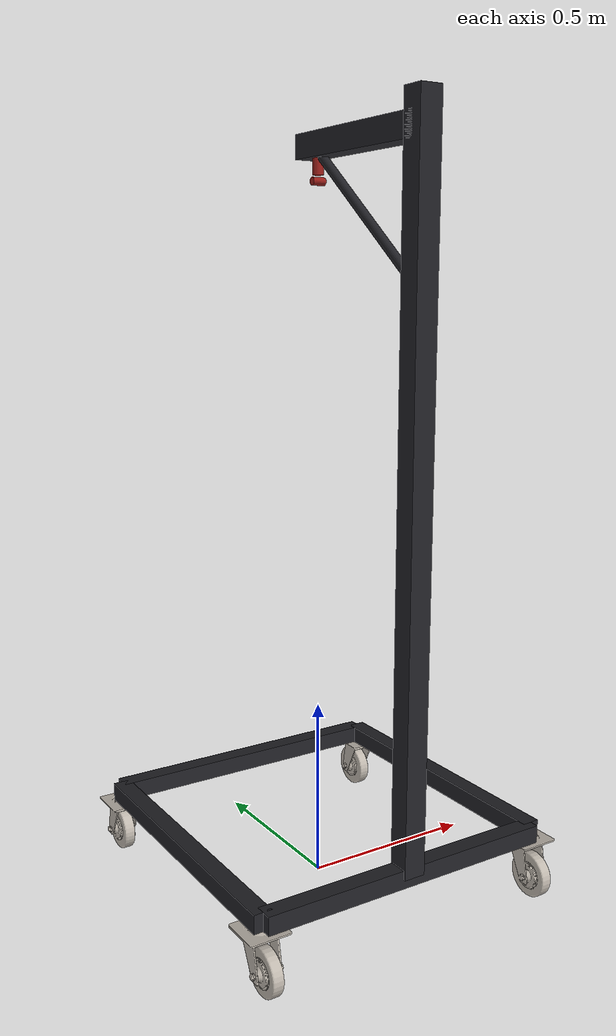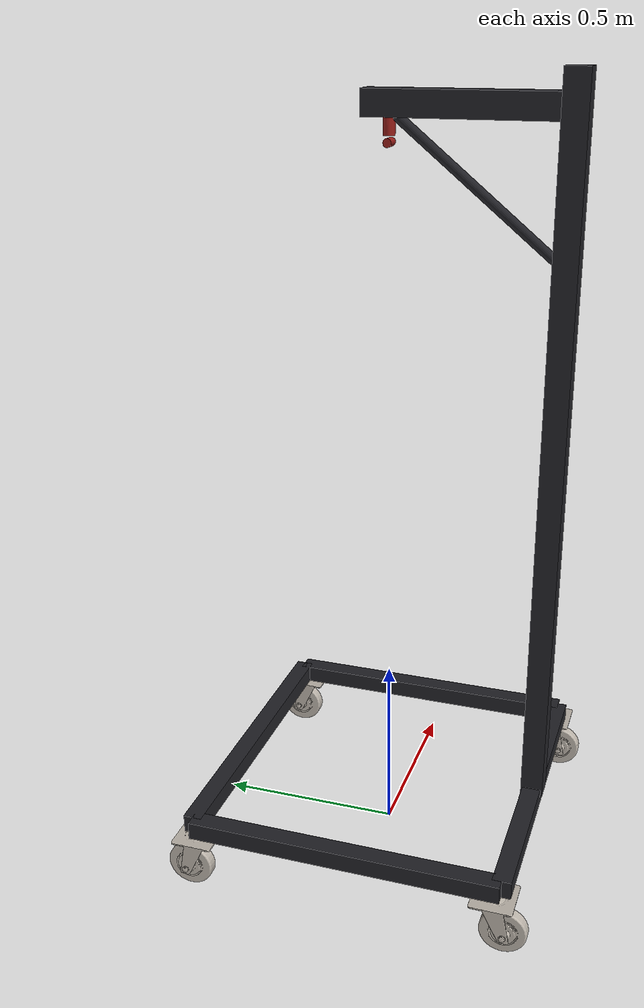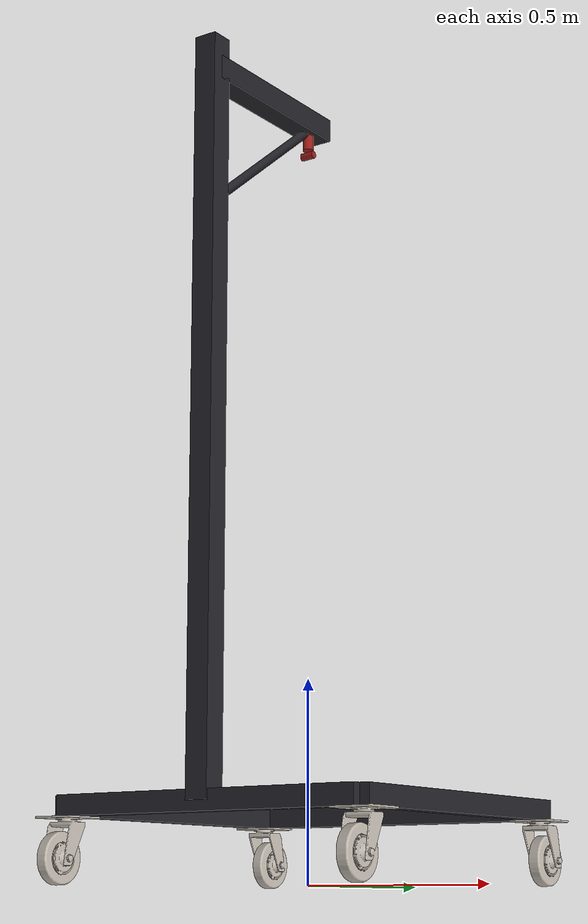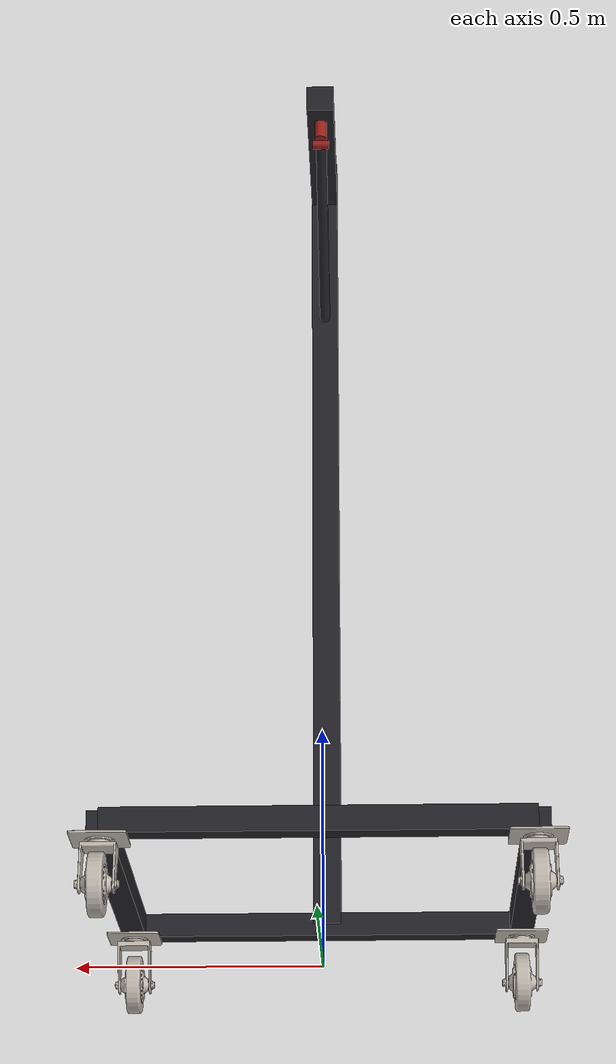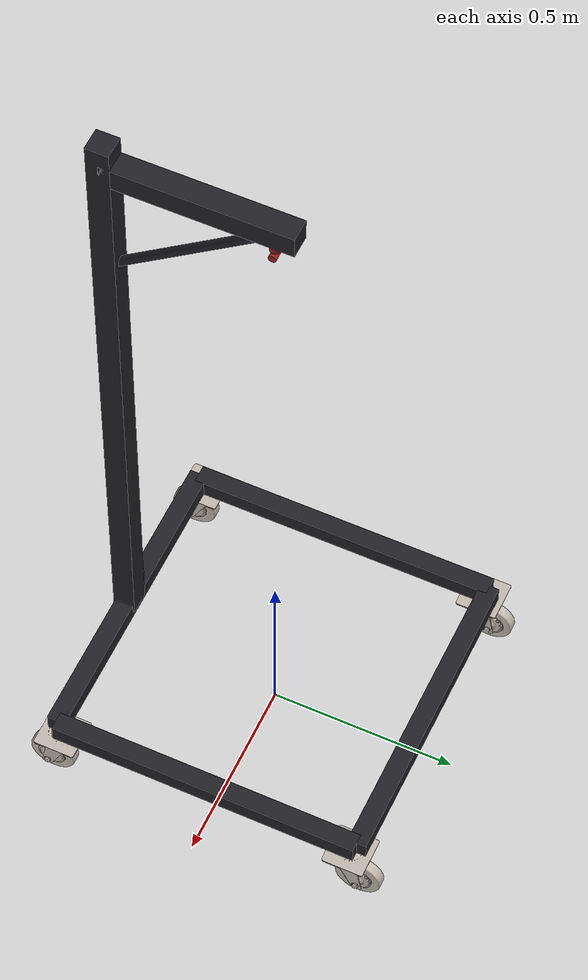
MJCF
<mujoco model="humanoid_gantry">
  <compiler angle="radian" autolimits="true" meshdir="." texturedir="."/>

  <asset>
    <texture name="wheel_color" type="2d" file="../trolley_wheel/textures/wheel_baseColor.png"/>
    <texture name="wheel_top_color" type="2d" file="../trolley_wheel/textures/top_part_baseColor.png"/>
    <material name="wheel"     texture="wheel_color"/>
    <material name="wheel_top" texture="wheel_top_color"/>
    <material name="steel"     rgba="0.13 0.13 0.15 1" specular="0.5" shininess="0.4"/>
    <material name="hook"      rgba="0.60 0.12 0.10 1" specular="0.4" shininess="0.3"/>
    <mesh name="wheel"     file="../trolley_wheel/trolley_wheel_wheel.obj"/>
    <mesh name="wheel_top" file="../trolley_wheel/trolley_wheel_top.obj"/>
  </asset>

  <worldbody>
    <body name="humanoid_gantry">
      <!-- Base frame: closed rectangle of steel tubing (0.84 x 0.84 m footprint) resting on the
           four caster top plates (plate at z=0.160; rail centre-line at 0.185). Collidable. -->
      <geom name="rail_left"  type="box" size="0.025 0.42 0.025"  pos=" 0.42  0     0.185" material="steel"/>
      <geom name="rail_right" type="box" size="0.025 0.42 0.025"  pos="-0.42  0     0.185" material="steel"/>
      <geom name="rail_back"  type="box" size="0.42  0.025 0.025" pos=" 0    -0.42  0.185" material="steel"/>
      <geom name="rail_front" type="box" size="0.42  0.025 0.025" pos=" 0     0.42  0.185" material="steel"/>

      <!-- Vertical mast at the back edge, rising to 2.05 m. Collidable (a swinging robot may touch it). -->
      <geom name="mast" type="box" size="0.03 0.03 0.9325" pos="0 -0.42 1.1175" material="steel"/>

      <!-- Cantilever boom: horizontal arm from the mast top forward to over the base centre (y=0),
           top face at ~2.0 m. Collidable. -->
      <geom name="boom" type="box" size="0.03 0.24 0.03" pos="0 -0.18 1.97" material="steel"/>

      <!-- Diagonal tension brace from upper mast to the boom tip (decorative, echoes the reference).
           Non-colliding thin strut. -->
      <geom name="brace" type="capsule" fromto="0 -0.42 1.62  0 -0.02 1.94" size="0.012"
            material="steel" contype="0" conaffinity="0"/>

      <!-- Fixed hang point (eyelet) at the boom tip, over the base centroid. Where a robot harness
           would clip; static (no winch). Non-colliding. -->
      <geom name="hang_eyelet" type="cylinder" fromto="0 0 1.94  0 0 1.90" size="0.014"
            material="hook" contype="0" conaffinity="0"/>
      <geom name="hang_ring"   type="cylinder" fromto="-0.018 0 1.885  0.018 0 1.885" size="0.010"
            material="hook" contype="0" conaffinity="0"/>

      <geom name="caster_fl_wheel" type="mesh" mesh="wheel"     material="wheel"     pos=" 0.42  0.42 0"/>
      <geom name="caster_fl_top"   type="mesh" mesh="wheel_top" material="wheel_top" pos=" 0.42  0.42 0" contype="0" conaffinity="0"/>
      <geom name="caster_fr_wheel" type="mesh" mesh="wheel"     material="wheel"     pos="-0.42  0.42 0"/>
      <geom name="caster_fr_top"   type="mesh" mesh="wheel_top" material="wheel_top" pos="-0.42  0.42 0" contype="0" conaffinity="0"/>
      <geom name="caster_bl_wheel" type="mesh" mesh="wheel"     material="wheel"     pos=" 0.42 -0.42 0" quat="0 0 0 1"/>
      <geom name="caster_bl_top"   type="mesh" mesh="wheel_top" material="wheel_top" pos=" 0.42 -0.42 0" quat="0 0 0 1" contype="0" conaffinity="0"/>
      <geom name="caster_br_wheel" type="mesh" mesh="wheel"     material="wheel"     pos="-0.42 -0.42 0" quat="0 0 0 1"/>
      <geom name="caster_br_top"   type="mesh" mesh="wheel_top" material="wheel_top" pos="-0.42 -0.42 0" quat="0 0 0 1" contype="0" conaffinity="0"/>
    </body>
  </worldbody>
</mujoco>
